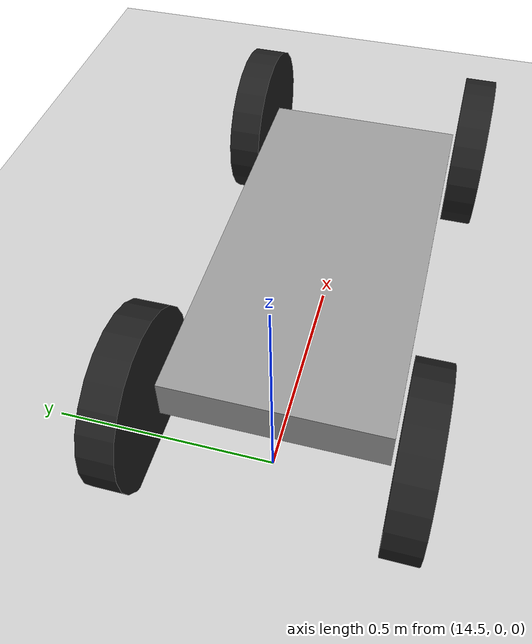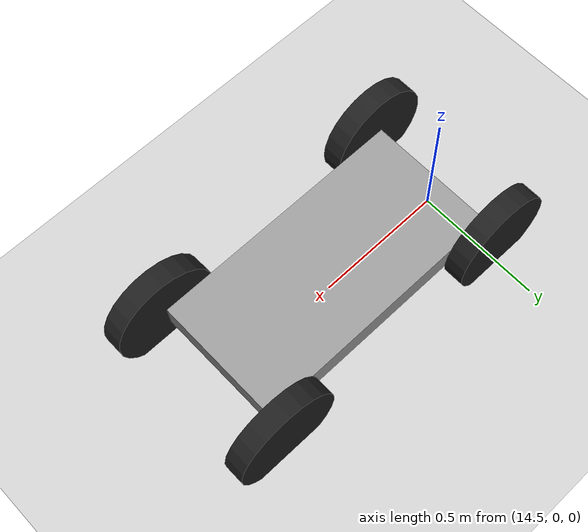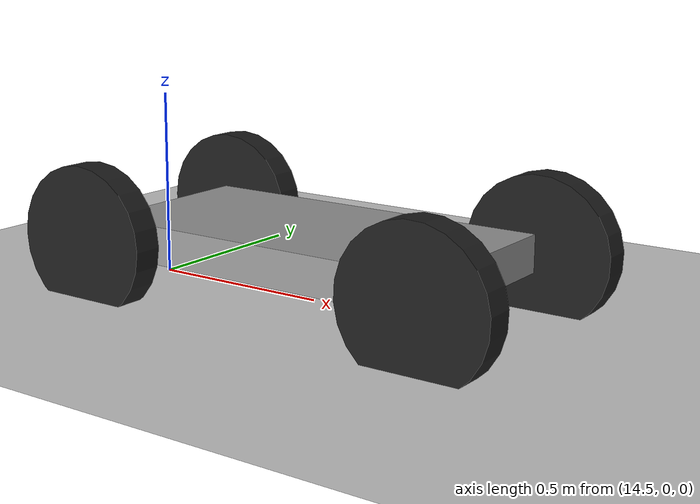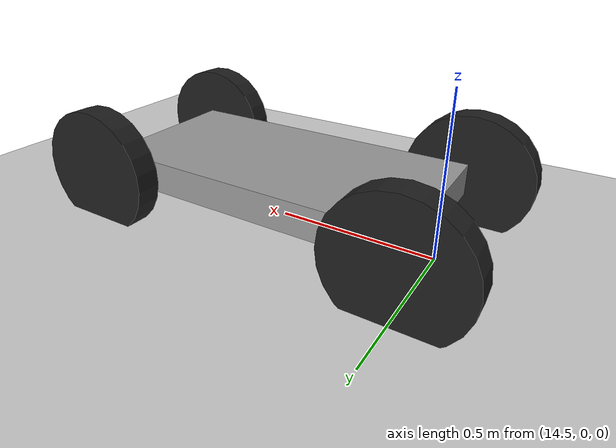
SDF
<?xml version="1.0" ?>
<sdf version="1.9">
  <world name="external_world">

    <!-- Physics — required rate for PX4 sensor integration -->
    <physics type="ode">
      <max_step_size>0.004</max_step_size>
      <real_time_factor>1.0</real_time_factor>
      <real_time_update_rate>250</real_time_update_rate>
    </physics>

    <!-- Required by PX4 sensor plugins via server.config -->
    <gravity>0 0 -9.8</gravity>
    <magnetic_field>6e-06 2.3e-05 -4.2e-05</magnetic_field>
    <atmosphere type="adiabatic"/>

    <!-- GPS home position — required for NavSat/GPS sensor -->
    <spherical_coordinates>
      <surface_model>EARTH_WGS84</surface_model>
      <world_frame_orientation>ENU</world_frame_orientation>
      <latitude_deg>47.397971057728974</latitude_deg>
      <longitude_deg>8.546163739800146</longitude_deg>
      <elevation>0</elevation>
    </spherical_coordinates>

    <!-- Sun -->
    <light name="sunUTC" type="directional">
      <pose>0 0 500 0 0 0</pose>
      <cast_shadows>true</cast_shadows>
      <intensity>1</intensity>
      <direction>0.001 0.625 -0.78</direction>
      <diffuse>0.904 0.904 0.904 1</diffuse>
      <specular>0.271 0.271 0.271 1</specular>
      <attenuation>
        <range>2000</range>
        <linear>0</linear>
        <constant>1</constant>
        <quadratic>0</quadratic>
      </attenuation>
    </light>

    <!-- Ground plane -->
    <model name="ground_plane">
      <static>true</static>
      <link name="link">
        <collision name="collision">
          <geometry>
            <plane>
              <normal>0 0 1</normal>
              <size>1 1</size>
            </plane>
          </geometry>
          <surface>
            <friction><ode/></friction>
            <bounce/>
            <contact/>
          </surface>
        </collision>
        <visual name="visual">
          <geometry>
            <plane>
              <normal>0 0 1</normal>
              <size>500 500</size>
            </plane>
          </geometry>
          <material>
            <ambient>0.8 0.8 0.8 1</ambient>
            <diffuse>0.8 0.8 0.8 1</diffuse>
            <specular>0.1 0.1 0.1 1</specular>
          </material>
        </visual>
      </link>
    </model>

   <include>
      <uri>model://car</uri>
      <name>car_1</name>
      <pose>15 0 0 0 0 0</pose>
    </include>

  </world>
</sdf>

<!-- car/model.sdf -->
<sdf version='1.7'>
    <model name="my_robot">
      <link name='chassis'>
        <pose>0 0 0.15 0 -0 0</pose>
        <inertial>
          <pose>0.1 0 0 0 -0 0</pose>
          <mass>10</mass>
          <inertia>
            <ixx>0.216667</ixx>
            <iyy>0.841667</iyy>
            <izz>1.04167</izz>
            <ixy>0</ixy>
            <ixz>0</ixz>
            <iyz>0</iyz>
          </inertia>
        </inertial>
        <collision name='collision'>
          <geometry>
            <box>
              <size>1 0.5 0.1</size>
            </box>
          </geometry>
          <max_contacts>10</max_contacts>
          <surface>
            <contact>
              <ode/>
            </contact>
            <bounce/>
            <friction>
              <torsional>
                <ode/>
              </torsional>
              <ode/>
            </friction>
          </surface>
        </collision>
        <visual name='visual'>
          <geometry>
            <box>
              <size>1 0.5 0.1</size>
            </box>
          </geometry>
          <material>
            <script>
              <uri>file://media/materials/scripts/gazebo.material</uri>
              <name>Gazebo/Grey</name>
            </script>
          </material>
        </visual>
        <self_collide>0</self_collide>
        <enable_wind>0</enable_wind>
        <kinematic>0</kinematic>
      </link>
      <link name='wheel_front_left'>
        <pose>0.5 0.298 0.15 -1.5708 -0.087266 0</pose>
        <inertial>
          <mass>0.5</mass>
          <inertia>
            <ixx>0.00307917</ixx>
            <iyy>0.00307917</iyy>
            <izz>0.005625</izz>
            <ixy>0</ixy>
            <ixz>0</ixz>
            <iyz>0</iyz>
          </inertia>
          <pose>0 0 0 0 -0 0</pose>
        </inertial>
        <collision name='collision'>
          <geometry>
            <cylinder>
              <radius>0.2</radius>
              <length>0.08</length>
            </cylinder>
          </geometry>
          <max_contacts>10</max_contacts>
          <surface>
            <contact>
              <ode/>
            </contact>
            <bounce/>
            <friction>
              <torsional>
                <ode/>
              </torsional>
              <ode/>
            </friction>
          </surface>
        </collision>
        <visual name='visual'>
          <geometry>
            <cylinder>
              <radius>0.2</radius>
              <length>0.08</length>
            </cylinder>
          </geometry>
          <material>
            <script>
              <uri>file://media/materials/scripts/gazebo.material</uri>
              <name>Gazebo/Black</name>
            </script>
          </material>
        </visual>
        <self_collide>0</self_collide>
        <enable_wind>0</enable_wind>
        <kinematic>0</kinematic>
      </link>
      <joint name='wheel_front_left_steer' type='revolute'>
        <parent>chassis</parent>
        <child>wheel_front_left</child>
        <axis>
          <xyz>0 0 1</xyz>
          <limit>
            <upper>1e+16</upper>
            <lower>-1e+16</lower>
          </limit>
          <dynamics>
            <spring_reference>0</spring_reference>
            <spring_stiffness>0</spring_stiffness>
          </dynamics>
        </axis>
      </joint>
      <link name='wheel_front_right'>
        <pose>0.5 -0.298 0.15 -1.5708 -0.087266 0</pose>
        <inertial>
          <mass>0.5</mass>
          <inertia>
            <ixx>0.00307917</ixx>
            <iyy>0.00307917</iyy>
            <izz>0.005625</izz>
            <ixy>0</ixy>
            <ixz>0</ixz>
            <iyz>0</iyz>
          </inertia>
          <pose>0 0 0 0 -0 0</pose>
        </inertial>
        <collision name='collision'>
          <geometry>
            <cylinder>
              <radius>0.2</radius>
              <length>0.08</length>
            </cylinder>
          </geometry>
          <max_contacts>10</max_contacts>
          <surface>
            <contact>
              <ode/>
            </contact>
            <bounce/>
            <friction>
              <torsional>
                <ode/>
              </torsional>
              <ode/>
            </friction>
          </surface>
        </collision>
        <visual name='visual'>
          <geometry>
            <cylinder>
              <radius>0.2</radius>
              <length>0.08</length>
            </cylinder>
          </geometry>
          <material>
            <script>
              <uri>file://media/materials/scripts/gazebo.material</uri>
              <name>Gazebo/Black</name>
            </script>
          </material>
        </visual>
        <self_collide>0</self_collide>
        <enable_wind>0</enable_wind>
        <kinematic>0</kinematic>
      </link>
      <joint name='wheel_front_right_steer' type='revolute'>
        <parent>chassis</parent>
        <child>wheel_front_right</child>
        <axis>
          <xyz>0 0 1</xyz>
          <limit>
            <upper>1e+16</upper>
            <lower>-1e+16</lower>
          </limit>
          <dynamics>
            <spring_reference>0</spring_reference>
            <spring_stiffness>0</spring_stiffness>
          </dynamics>
        </axis>
      </joint>
      <link name='wheel_rear_left'>
        <pose>-0.5 0.298 0.15 -1.5708 0 0</pose>
        <inertial>
          <mass>0.5</mass>
          <inertia>
            <ixx>0.00307917</ixx>
            <iyy>0.00307917</iyy>
            <izz>0.005625</izz>
            <ixy>0</ixy>
            <ixz>0</ixz>
            <iyz>0</iyz>
          </inertia>
          <pose>0 0 0 0 -0 0</pose>
        </inertial>
        <collision name='collision'>
          <geometry>
            <cylinder>
              <radius>0.2</radius>
              <length>0.08</length>
            </cylinder>
          </geometry>
          <max_contacts>10</max_contacts>
          <surface>
            <contact>
              <ode/>
            </contact>
            <bounce/>
            <friction>
              <torsional>
                <ode/>
              </torsional>
              <ode/>
            </friction>
          </surface>
        </collision>
        <visual name='visual'>
          <geometry>
            <cylinder>
              <radius>0.2</radius>
              <length>0.08</length>
            </cylinder>
          </geometry>
          <material>
            <script>
              <uri>file://media/materials/scripts/gazebo.material</uri>
              <name>Gazebo/Black</name>
            </script>
          </material>
        </visual>
        <self_collide>0</self_collide>
        <enable_wind>0</enable_wind>
        <kinematic>0</kinematic>
      </link>
      <joint name='left_wheel_back' type='revolute'>
        <parent>chassis</parent>
        <child>wheel_rear_left</child>
        <axis>
          <xyz>0 0 1</xyz>
          <limit>
            <lower>-1e+16</lower>
            <upper>1e+16</upper>
          </limit>
          <dynamics>
            <spring_reference>0</spring_reference>
            <spring_stiffness>0</spring_stiffness>
          </dynamics>
        </axis>
      </joint>
      <link name='wheel_rear_right'>
        <pose>-0.5 -0.298 0.15 -1.5708 0 0</pose>
        <inertial>
          <mass>0.5</mass>
          <inertia>
            <ixx>0.00307917</ixx>
            <iyy>0.00307917</iyy>
            <izz>0.005625</izz>
            <ixy>0</ixy>
            <ixz>0</ixz>
            <iyz>0</iyz>
          </inertia>
          <pose>0 0 0 0 -0 0</pose>
        </inertial>
        <collision name='collision'>
          <geometry>
            <cylinder>
              <radius>0.2</radius>
              <length>0.08</length>
            </cylinder>
          </geometry>
          <max_contacts>10</max_contacts>
          <surface>
            <contact>
              <ode/>
            </contact>
            <bounce/>
            <friction>
              <torsional>
                <ode/>
              </torsional>
              <ode/>
            </friction>
          </surface>
        </collision>
        <visual name='visual'>
          <geometry>
            <cylinder>
              <radius>0.2</radius>
              <length>0.08</length>
            </cylinder>
          </geometry>
          <material>
            <script>
              <uri>file://media/materials/scripts/gazebo.material</uri>
              <name>Gazebo/Black</name>
            </script>
          </material>
        </visual>
        <self_collide>0</self_collide>
        <enable_wind>0</enable_wind>
        <kinematic>0</kinematic>
      </link>
      <joint name='right_wheel_back' type='revolute'>
        <parent>chassis</parent>
        <child>wheel_rear_right</child>
        <axis>
          <xyz>0 0 1</xyz>
          <limit>
            <lower>-1e+16</lower>
            <upper>1e+16</upper>
          </limit>
          <dynamics>
            <spring_reference>0</spring_reference>
            <spring_stiffness>0</spring_stiffness>
          </dynamics>
        </axis>
      </joint>
      <pose>2.7216 -2.1701 0 0 -0 0</pose>
    </model>
</sdf>
